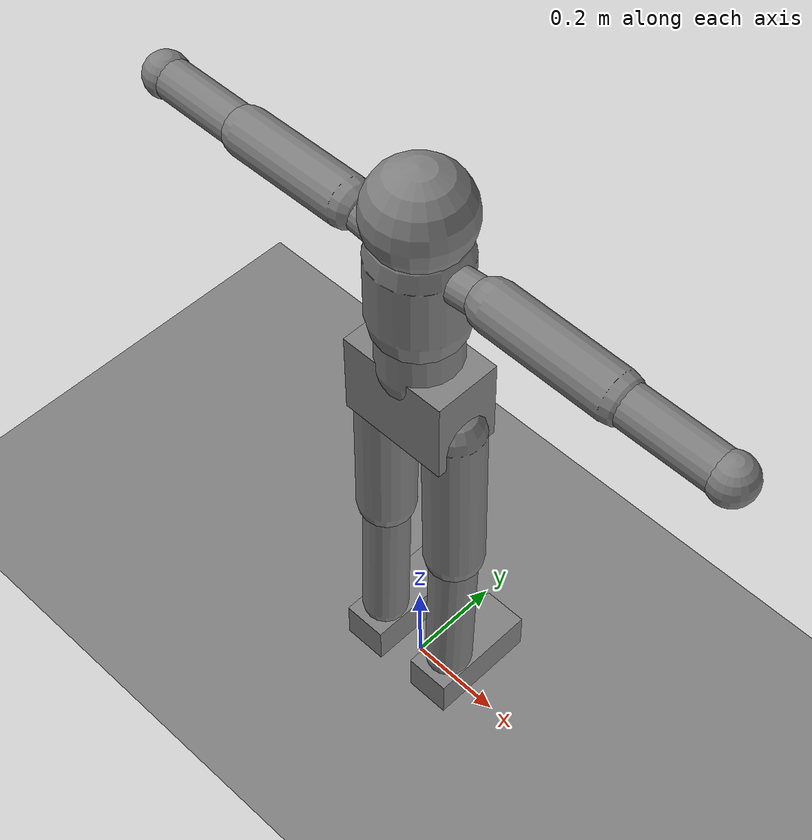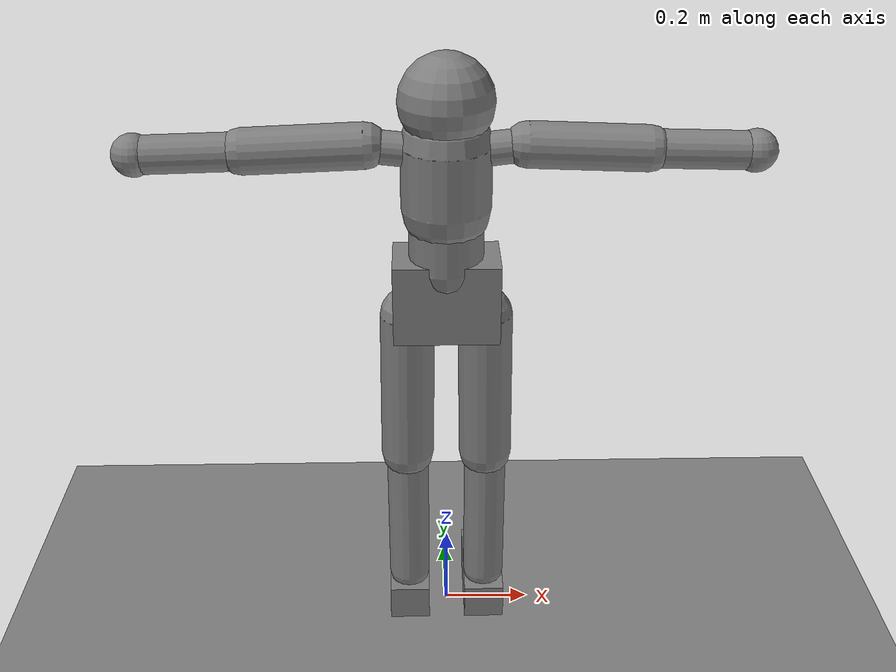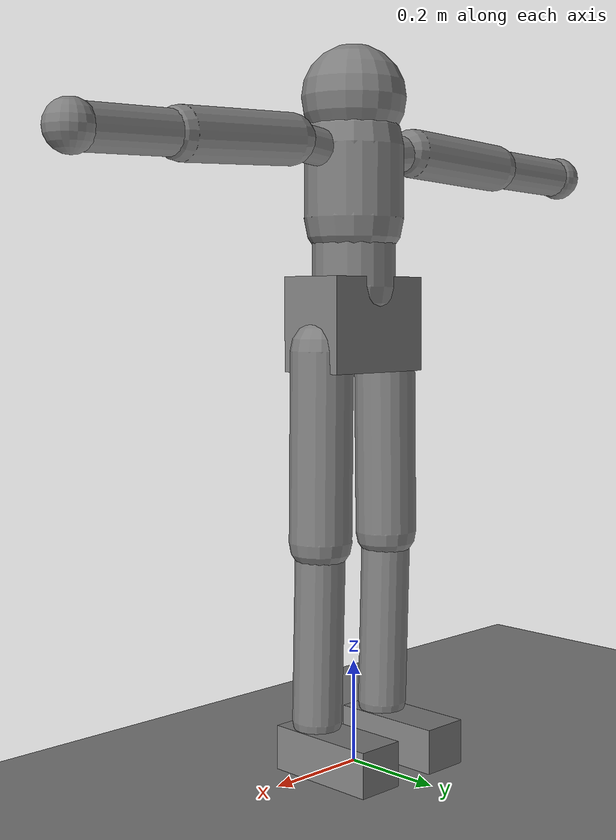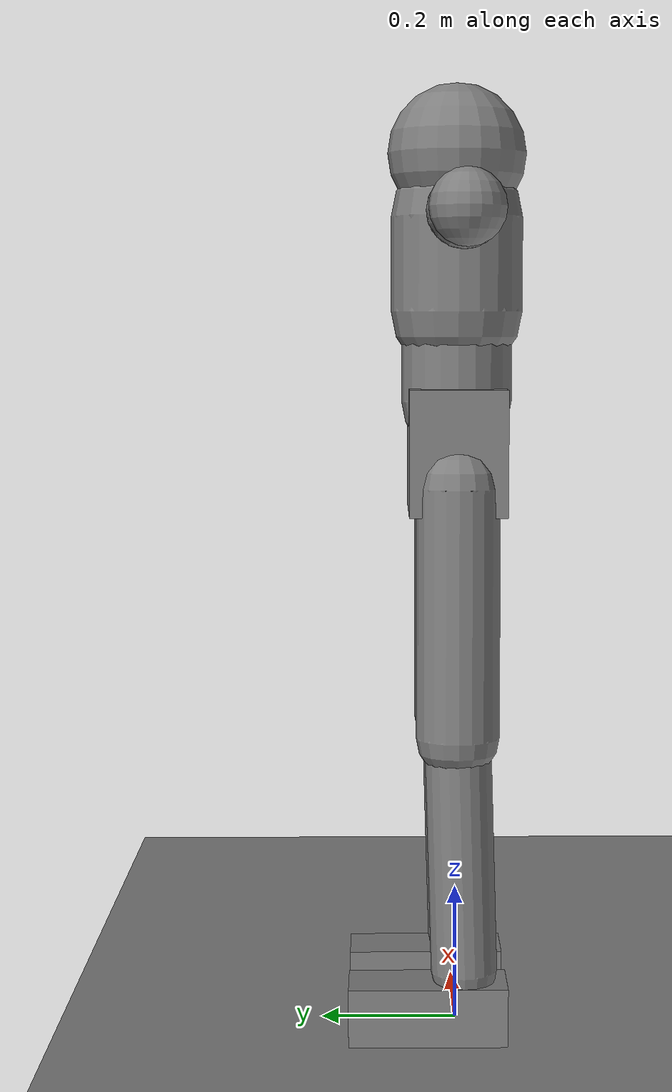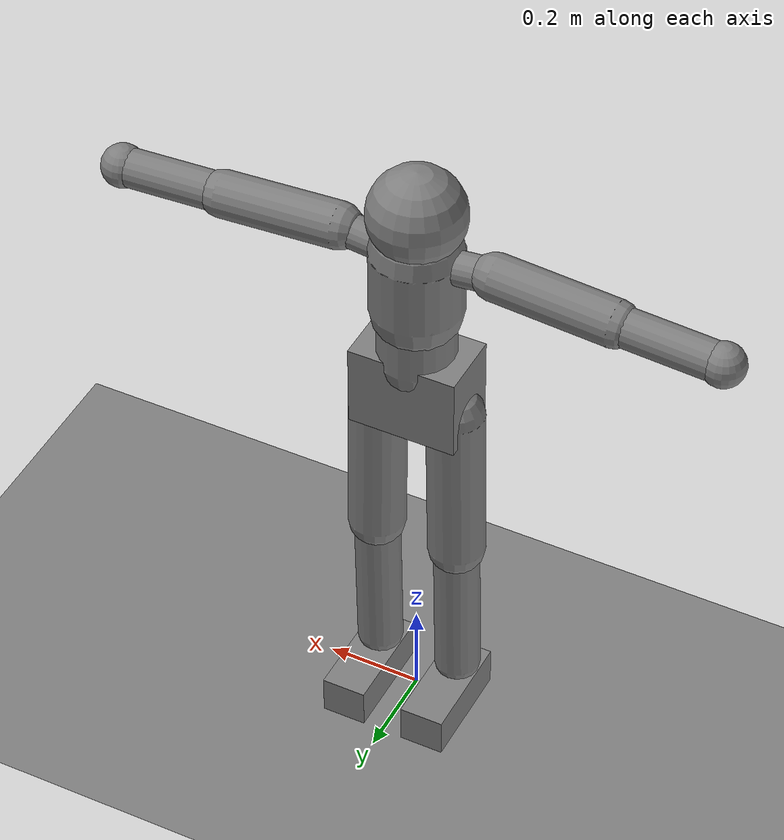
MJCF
<?xml version="1.0" encoding="utf-8"?>
<mujoco>
  <worldbody>
    <body pos="0 0 0.78565" quat="-1 0 0 0" gravcomp="0" name="hips">
      <freejoint name="root" />
      <geom mass="8" type="box" size="0.115 0.07 0.09" pos="0 0 0.06999999" quat="-1 0 0 0" priority="0" contype="1" conaffinity="1" group="0" condim="3" solmix="1" solref="0.01 1" solimp="0.9 0.95 0.001" margin="0" gap="0" friction="1 0.005 0.0001" fluidshape="none" fluidcoef="5 0.25 1.5 1 1" name="pelvis" />
      <body pos="0 0 0.14" quat="-1 0 0 0" gravcomp="0" name="torso">
        <joint type="hinge" pos="0 0 0" axis="-1.192093E-07 0 1" ref="0" armature="0.02" springref="0" springdamper="0 0" damping="1" stiffness="0" solreflimit="0.02 1" solimplimit="0.9 0.95 0.001 0.5 2" solreffriction="0.02 1" solimpfriction="0.9 0.95 0.001 0.5 2" frictionloss="0" limited="true" margin="0" range="-44.99999 44.99999" name="abdomen_z" />
        <joint type="hinge" pos="0 0 0" axis="-1.192093E-07 1 0" ref="0" armature="0.02" springref="0" springdamper="0 0" damping="1" stiffness="0" solreflimit="0.02 1" solimplimit="0.9 0.95 0.001 0.5 2" solreffriction="0.02 1" solimpfriction="0.9 0.95 0.001 0.5 2" frictionloss="0" limited="true" margin="0" range="-34.99998 34.99998" name="abdomen_y" />
        <joint type="hinge" pos="0 0 0" axis="1 0 0" ref="0" armature="0.02" springref="0" springdamper="0 0" damping="1" stiffness="0" solreflimit="0.02 1" solimplimit="0.9 0.95 0.001 0.5 2" solreffriction="0.02 1" solimpfriction="0.9 0.95 0.001 0.5 2" frictionloss="0" limited="true" margin="0" range="-44.99999 24.99998" name="abdomen_x" />
        <geom mass="5" type="capsule" size="0.08 0.065" pos="0 0 0.065" quat="0 1 0 0" priority="0" contype="1" conaffinity="1" group="0" condim="3" solmix="1" solref="0.01 1" solimp="0.9 0.95 0.001" margin="0" gap="0" friction="1 0.005 0.0001" fluidshape="none" fluidcoef="5 0.25 1.5 1 1" name="spine" />
        <geom mass="6.6" type="capsule" size="0.095 0.0675" pos="-1.53734E-09 -3.87107E-09 0.1975" quat="0 1 0 0" priority="0" contype="1" conaffinity="1" group="0" condim="3" solmix="1" solref="0.01 1" solimp="0.9 0.95 0.001" margin="0" gap="0" friction="1 0.005 0.0001" fluidshape="none" fluidcoef="5 0.25 1.5 1 1" name="chest" />
        <geom mass="0.7" type="capsule" size="0.035 0.06791539" pos="-0.0975 -8.6144E-10 0.2575001" quat="0.6669212 1.00118E-07 0.7451282 0" priority="0" contype="1" conaffinity="1" group="0" condim="3" solmix="1" solref="0.01 1" solimp="0.9 0.95 0.001" margin="0" gap="0" friction="1 0.005 0.0001" fluidshape="none" fluidcoef="5 0.25 1.5 1 1" name="clavicle_L" />
        <geom mass="0.7" type="capsule" size="0.035 0.06791539" pos="0.0975 -8.6144E-10 0.2575001" quat="0.6669212 1.00118E-07 -0.7451282 0" priority="0" contype="1" conaffinity="1" group="0" condim="3" solmix="1" solref="0.01 1" solimp="0.9 0.95 0.001" margin="0" gap="0" friction="1 0.005 0.0001" fluidshape="none" fluidcoef="5 0.25 1.5 1 1" name="clavicle_R" />
        <body pos="-3.07468E-09 -7.74214E-09 0.265" quat="-1 0 0 0" gravcomp="0" name="head">
          <joint type="hinge" pos="0 0 0" axis="1 0 0" ref="0" armature="0.02" springref="0" springdamper="0 0" damping="1" stiffness="0" solreflimit="0.02 1" solimplimit="0.9 0.95 0.001 0.5 2" solreffriction="0.02 1" solimpfriction="0.9 0.95 0.001 0.5 2" frictionloss="0" limited="true" margin="0" range="-34.99998 34.99998" name="neck_x" />
          <joint type="hinge" pos="0 0 0" axis="-1.192093E-07 0 1" ref="0" armature="0.02" springref="0" springdamper="0 0" damping="1" stiffness="0" solreflimit="0.02 1" solimplimit="0.9 0.95 0.001 0.5 2" solreffriction="0.02 1" solimpfriction="0.9 0.95 0.001 0.5 2" frictionloss="0" limited="true" margin="0" range="-50.00002 50.00002" name="neck_z" />
          <geom mass="4" type="sphere" size="0.1" pos="0 0 0.09000003" quat="-1 0 0 0" priority="0" contype="1" conaffinity="1" group="0" condim="3" solmix="1" solref="0.01 1" solimp="0.9 0.95 0.001" margin="0" gap="0" friction="1 0.005 0.0001" fluidshape="none" fluidcoef="5 0.25 1.5 1 1" name="head" />
        </body>
        <body pos="-0.165 8.20806E-09 0.265" quat="-1 0 0 0" gravcomp="0" name="upper_arm_L">
          <joint type="hinge" pos="0 0 0" axis="-1.192093E-07 1 0" ref="0" armature="0.02" springref="0" springdamper="0 0" damping="1" stiffness="0" solreflimit="0.02 1" solimplimit="0.9 0.95 0.001 0.5 2" solreffriction="0.02 1" solimpfriction="0.9 0.95 0.001 0.5 2" frictionloss="0" limited="true" margin="0" range="-100 100" name="shoulder_y_L" />
          <joint type="hinge" pos="0 0 0" axis="-1.192093E-07 0 1" ref="0" armature="0.02" springref="0" springdamper="0 0" damping="1" stiffness="0" solreflimit="0.02 1" solimplimit="0.9 0.95 0.001 0.5 2" solreffriction="0.02 1" solimpfriction="0.9 0.95 0.001 0.5 2" frictionloss="0" limited="true" margin="0" range="-85.00001 85.00001" name="shoulder_z_L" />
          <geom mass="1.8" type="capsule" size="0.048 0.125169" pos="-0.125 0.0025 -0.005999804" quat="0.723856 0.0137962 0.6898131 0" priority="0" contype="1" conaffinity="1" group="0" condim="3" solmix="1" solref="0.01 1" solimp="0.9 0.95 0.001" margin="0" gap="0" friction="1 0.005 0.0001" fluidshape="none" fluidcoef="5 0.25 1.5 1 1" name="upper_arm_L" />
          <body pos="-0.25 0.00499999 -0.01199985" quat="-1 0 0 0" gravcomp="0" name="forearm_L">
            <joint type="hinge" pos="0 0 0" axis="-1.192093E-07 0 1" ref="0" armature="0.02" springref="0" springdamper="0 0" damping="1" stiffness="0" solreflimit="0.02 1" solimplimit="0.9 0.95 0.001 0.5 2" solreffriction="0.02 1" solimpfriction="0.9 0.95 0.001 0.5 2" frictionloss="0" limited="true" margin="0" range="-139.9999 0" name="elbow_L" />
            <geom mass="1.15" type="capsule" size="0.04000001 0.110101" pos="-0.11 0.0025 -0.003999949" quat="0.719837 0.0157719 0.693964 0" priority="0" contype="1" conaffinity="1" group="0" condim="3" solmix="1" solref="0.01 1" solimp="0.9 0.95 0.001" margin="0" gap="0" friction="1 0.005 0.0001" fluidshape="none" fluidcoef="5 0.25 1.5 1 1" name="forearm_L" />
            <geom mass="0.25" type="sphere" size="0.045" pos="-0.22 0.005 -0.007999778" quat="-1 0 0 0" priority="0" contype="1" conaffinity="1" group="0" condim="3" solmix="1" solref="0.01 1" solimp="0.9 0.95 0.001" margin="0" gap="0" friction="1 0.005 0.0001" fluidshape="none" fluidcoef="5 0.25 1.5 1 1" name="hand_L" />
          </body>
        </body>
        <body pos="0.165 8.20806E-09 0.265" quat="-1 0 0 0" gravcomp="0" name="upper_arm_R">
          <joint type="hinge" pos="0 0 0" axis="-1.192093E-07 1 0" ref="0" armature="0.02" springref="0" springdamper="0 0" damping="1" stiffness="0" solreflimit="0.02 1" solimplimit="0.9 0.95 0.001 0.5 2" solreffriction="0.02 1" solimpfriction="0.9 0.95 0.001 0.5 2" frictionloss="0" limited="true" margin="0" range="-100 100" name="shoulder_y_R" />
          <joint type="hinge" pos="0 0 0" axis="-1.192093E-07 0 1" ref="0" armature="0.02" springref="0" springdamper="0 0" damping="1" stiffness="0" solreflimit="0.02 1" solimplimit="0.9 0.95 0.001 0.5 2" solreffriction="0.02 1" solimpfriction="0.9 0.95 0.001 0.5 2" frictionloss="0" limited="true" margin="0" range="-85.00001 85.00001" name="shoulder_z_R" />
          <geom mass="1.8" type="capsule" size="0.048 0.125169" pos="0.125 0.0025 -0.005999804" quat="0.723856 0.0137962 -0.6898131 0" priority="0" contype="1" conaffinity="1" group="0" condim="3" solmix="1" solref="0.01 1" solimp="0.9 0.95 0.001" margin="0" gap="0" friction="1 0.005 0.0001" fluidshape="none" fluidcoef="5 0.25 1.5 1 1" name="upper_arm_R" />
          <body pos="0.25 0.00499999 -0.01199985" quat="-1 0 0 0" gravcomp="0" name="forearm_R">
            <joint type="hinge" pos="0 0 0" axis="-1.192093E-07 0 1" ref="0" armature="0.02" springref="0" springdamper="0 0" damping="1" stiffness="0" solreflimit="0.02 1" solimplimit="0.9 0.95 0.001 0.5 2" solreffriction="0.02 1" solimpfriction="0.9 0.95 0.001 0.5 2" frictionloss="0" limited="true" margin="0" range="0 139.9999" name="elbow_R" />
            <geom mass="1.15" type="capsule" size="0.04000001 0.110101" pos="0.11 0.0025 -0.003999949" quat="0.719837 0.0157719 -0.693964 0" priority="0" contype="1" conaffinity="1" group="0" condim="3" solmix="1" solref="0.01 1" solimp="0.9 0.95 0.001" margin="0" gap="0" friction="1 0.005 0.0001" fluidshape="none" fluidcoef="5 0.25 1.5 1 1" name="forearm_R" />
            <geom mass="0.25" type="sphere" size="0.045" pos="0.22 0.005 -0.007999778" quat="-1 0 0 0" priority="0" contype="1" conaffinity="1" group="0" condim="3" solmix="1" solref="0.01 1" solimp="0.9 0.95 0.001" margin="0" gap="0" friction="1 0.005 0.0001" fluidshape="none" fluidcoef="5 0.25 1.5 1 1" name="hand_R" />
          </body>
        </body>
      </body>
      <body pos="-0.085 2.85192E-11 0.01999998" quat="-1 0 0 0" gravcomp="0" name="thigh_L">
        <joint type="hinge" pos="0 0 0" axis="-1.192093E-07 0 1" ref="0" armature="0.02" springref="0" springdamper="0 0" damping="1" stiffness="0" solreflimit="0.02 1" solimplimit="0.9 0.95 0.001 0.5 2" solreffriction="0.02 1" solimpfriction="0.9 0.95 0.001 0.5 2" frictionloss="0" limited="true" margin="0" range="-44.99999 44.99999" name="hip_z_L" />
        <joint type="hinge" pos="0 0 0" axis="1 0 0" ref="0" armature="0.02" springref="0" springdamper="0 0" damping="1" stiffness="0" solreflimit="0.02 1" solimplimit="0.9 0.95 0.001 0.5 2" solreffriction="0.02 1" solimpfriction="0.9 0.95 0.001 0.5 2" frictionloss="0" limited="true" margin="0" range="-34.99998 109.9999" name="hip_x_L" />
        <joint type="hinge" pos="0 0 0" axis="-1.192093E-07 1 0" ref="0" armature="0.02" springref="0" springdamper="0 0" damping="1" stiffness="0" solreflimit="0.02 1" solimplimit="0.9 0.95 0.001 0.5 2" solreffriction="0.02 1" solimpfriction="0.9 0.95 0.001 0.5 2" frictionloss="0" limited="true" margin="0" range="-40.00002 40.00002" name="hip_y_L" />
        <geom mass="4.5" type="capsule" size="0.06 0.180017" pos="-0.002499998 -1.27403E-11 -0.18" quat="0.999976 -3.53873E-11 0.00694394 0" priority="0" contype="1" conaffinity="1" group="0" condim="3" solmix="1" solref="0.01 1" solimp="0.9 0.95 0.001" margin="0" gap="0" friction="1 0.005 0.0001" fluidshape="none" fluidcoef="5 0.25 1.5 1 1" name="thigh_L" />
        <body pos="-0.005000003 -2.54807E-11 -0.36" quat="-1 0 0 0" gravcomp="0" name="shin_L">
          <joint type="hinge" pos="0 0 0" axis="1 0 0" ref="0" armature="0.02" springref="0" springdamper="0 0" damping="1" stiffness="0" solreflimit="0.02 1" solimplimit="0.9 0.95 0.001 0.5 2" solreffriction="0.02 1" solimpfriction="0.9 0.95 0.001 0.5 2" frictionloss="0" limited="true" margin="0" range="-160.0002 0" name="knee_L" />
          <geom mass="1.8" type="capsule" size="0.048 0.172572" pos="0 -0.005 -0.1725" quat="0.999895 -0.0144882 -3.17359E-10 0" priority="0" contype="1" conaffinity="1" group="0" condim="3" solmix="1" solref="0.01 1" solimp="0.9 0.95 0.001" margin="0" gap="0" friction="1 0.005 0.0001" fluidshape="none" fluidcoef="5 0.25 1.5 1 1" name="shin_L" />
          <body pos="0 -0.01 -0.3450001" quat="-1 0 0 0" gravcomp="0" name="foot_L">
            <joint type="hinge" pos="0 0 0" axis="1 0 0" ref="0" armature="0.02" springref="0" springdamper="0 0" damping="1" stiffness="0" solreflimit="0.02 1" solimplimit="0.9 0.95 0.001 0.5 2" solreffriction="0.02 1" solimpfriction="0.9 0.95 0.001 0.5 2" frictionloss="0" limited="true" margin="0" range="-44.99999 44.99999" name="ankle_L" />
            <geom mass="0.5" type="box" size="0.0470074 0.11527 0.0428248" pos="0 0.0529468 -0.05782473" quat="-1 0 0 0" priority="0" contype="1" conaffinity="1" group="0" condim="3" solmix="1" solref="0.01 1" solimp="0.9 0.95 0.001" margin="0" gap="0" friction="1.2 0.02 0.001" fluidshape="none" fluidcoef="5 0.25 1.5 1 1" name="foot_L" />
          </body>
        </body>
      </body>
      <body pos="0.085 2.85192E-11 0.01999998" quat="-1 0 0 0" gravcomp="0" name="thigh_R">
        <joint type="hinge" pos="0 0 0" axis="-1.192093E-07 0 1" ref="0" armature="0.02" springref="0" springdamper="0 0" damping="1" stiffness="0" solreflimit="0.02 1" solimplimit="0.9 0.95 0.001 0.5 2" solreffriction="0.02 1" solimpfriction="0.9 0.95 0.001 0.5 2" frictionloss="0" limited="true" margin="0" range="-44.99999 44.99999" name="hip_z_R" />
        <joint type="hinge" pos="0 0 0" axis="1 0 0" ref="0" armature="0.02" springref="0" springdamper="0 0" damping="1" stiffness="0" solreflimit="0.02 1" solimplimit="0.9 0.95 0.001 0.5 2" solreffriction="0.02 1" solimpfriction="0.9 0.95 0.001 0.5 2" frictionloss="0" limited="true" margin="0" range="-34.99998 109.9999" name="hip_x_R" />
        <joint type="hinge" pos="0 0 0" axis="-1.192093E-07 1 0" ref="0" armature="0.02" springref="0" springdamper="0 0" damping="1" stiffness="0" solreflimit="0.02 1" solimplimit="0.9 0.95 0.001 0.5 2" solreffriction="0.02 1" solimpfriction="0.9 0.95 0.001 0.5 2" frictionloss="0" limited="true" margin="0" range="-40.00002 40.00002" name="hip_y_R" />
        <geom mass="4.5" type="capsule" size="0.06 0.180017" pos="0.002499998 -1.27403E-11 -0.18" quat="0.999976 -3.53873E-11 -0.00694394 0" priority="0" contype="1" conaffinity="1" group="0" condim="3" solmix="1" solref="0.01 1" solimp="0.9 0.95 0.001" margin="0" gap="0" friction="1 0.005 0.0001" fluidshape="none" fluidcoef="5 0.25 1.5 1 1" name="thigh_R" />
        <body pos="0.005000003 -2.54807E-11 -0.36" quat="-1 0 0 0" gravcomp="0" name="shin_R">
          <joint type="hinge" pos="0 0 0" axis="1 0 0" ref="0" armature="0.02" springref="0" springdamper="0 0" damping="1" stiffness="0" solreflimit="0.02 1" solimplimit="0.9 0.95 0.001 0.5 2" solreffriction="0.02 1" solimpfriction="0.9 0.95 0.001 0.5 2" frictionloss="0" limited="true" margin="0" range="-160.0002 0" name="knee_R" />
          <geom mass="1.8" type="capsule" size="0.048 0.172572" pos="0 -0.005 -0.1725" quat="0.999895 -0.0144882 3.17359E-10 0" priority="0" contype="1" conaffinity="1" group="0" condim="3" solmix="1" solref="0.01 1" solimp="0.9 0.95 0.001" margin="0" gap="0" friction="1 0.005 0.0001" fluidshape="none" fluidcoef="5 0.25 1.5 1 1" name="shin_R" />
          <body pos="0 -0.01 -0.3450001" quat="-1 0 0 0" gravcomp="0" name="foot_R">
            <joint type="hinge" pos="0 0 0" axis="1 0 0" ref="0" armature="0.02" springref="0" springdamper="0 0" damping="1" stiffness="0" solreflimit="0.02 1" solimplimit="0.9 0.95 0.001 0.5 2" solreffriction="0.02 1" solimpfriction="0.9 0.95 0.001 0.5 2" frictionloss="0" limited="true" margin="0" range="-44.99999 44.99999" name="ankle_R" />
            <geom mass="0.5" type="box" size="0.0470074 0.11527 0.0428248" pos="0 0.0529468 -0.05782473" quat="-1 0 0 0" priority="0" contype="1" conaffinity="1" group="0" condim="3" solmix="1" solref="0.01 1" solimp="0.9 0.95 0.001" margin="0" gap="0" friction="1.2 0.02 0.001" fluidshape="none" fluidcoef="5 0.25 1.5 1 1" name="foot_R" />
          </body>
        </body>
      </body>
    </body>
    <geom density="1000" type="plane" size="0 0 1" pos="0 0 0" quat="-1 0 0 0" priority="0" contype="1" conaffinity="1" group="0" condim="3" solmix="1" solref="0.01 1" solimp="0.9 0.95 0.001" margin="0" gap="0" friction="1 0.005 0.0001" fluidshape="none" fluidcoef="5 0.25 1.5 1 1" name="floor" />
  </worldbody>
  <contact />
  <tendon />
  <equality />
  <actuator>
    <general joint="abdomen_z" ctrllimited="true" forcelimited="true" ctrlrange="-0.785398 0.785398" forcerange="-200 200" lengthrange="0 0" gear="1" dyntype="none" gaintype="fixed" biastype="affine" dynprm="1 0 0" gainprm="1200 0 0" biasprm="0 -1200 -78.4282" name="act_abdomen_z" />
    <general joint="abdomen_y" ctrllimited="true" forcelimited="true" ctrlrange="-0.610865 0.610865" forcerange="-200 200" lengthrange="0 0" gear="1" dyntype="none" gaintype="fixed" biastype="affine" dynprm="1 0 0" gainprm="1200 0 0" biasprm="0 -1200 -112.061" name="act_abdomen_y" />
    <general joint="abdomen_x" ctrllimited="true" forcelimited="true" ctrlrange="-0.785398 0.436332" forcerange="-200 200" lengthrange="0 0" gear="1" dyntype="none" gaintype="fixed" biastype="affine" dynprm="1 0 0" gainprm="1200 0 0" biasprm="0 -1200 -82.5464" name="act_abdomen_x" />
    <general joint="neck_x" ctrllimited="true" forcelimited="true" ctrlrange="-0.610865 0.610865" forcerange="-40 40" lengthrange="0 0" gear="1" dyntype="none" gaintype="fixed" biastype="affine" dynprm="1 0 0" gainprm="240 0 0" biasprm="0 -240 -8.10333" name="act_neck_x" />
    <general joint="neck_z" ctrllimited="true" forcelimited="true" ctrlrange="-0.872665 0.872665" forcerange="-40 40" lengthrange="0 0" gear="1" dyntype="none" gaintype="fixed" biastype="affine" dynprm="1 0 0" gainprm="240 0 0" biasprm="0 -240 -5.87878" name="act_neck_z" />
    <general joint="shoulder_y_L" ctrllimited="true" forcelimited="true" ctrlrange="-1.74533 1.74533" forcerange="-80 80" lengthrange="0 0" gear="1" dyntype="none" gaintype="fixed" biastype="affine" dynprm="1 0 0" gainprm="480 0 0" biasprm="0 -480 -23.0533" name="act_shoulder_y_L" />
    <general joint="shoulder_z_L" ctrllimited="true" forcelimited="true" ctrlrange="-1.48353 1.48353" forcerange="-80 80" lengthrange="0 0" gear="1" dyntype="none" gaintype="fixed" biastype="affine" dynprm="1 0 0" gainprm="480 0 0" biasprm="0 -480 -23.037" name="act_shoulder_z_L" />
    <general joint="elbow_L" ctrllimited="true" forcelimited="true" ctrlrange="-2.44346 0" forcerange="-60 60" lengthrange="0 0" gear="1" dyntype="none" gaintype="fixed" biastype="affine" dynprm="1 0 0" gainprm="320 0 0" biasprm="0 -320 -8.30886" name="act_elbow_L" />
    <general joint="shoulder_y_R" ctrllimited="true" forcelimited="true" ctrlrange="-1.74533 1.74533" forcerange="-80 80" lengthrange="0 0" gear="1" dyntype="none" gaintype="fixed" biastype="affine" dynprm="1 0 0" gainprm="480 0 0" biasprm="0 -480 -23.0533" name="act_shoulder_y_R" />
    <general joint="shoulder_z_R" ctrllimited="true" forcelimited="true" ctrlrange="-1.48353 1.48353" forcerange="-80 80" lengthrange="0 0" gear="1" dyntype="none" gaintype="fixed" biastype="affine" dynprm="1 0 0" gainprm="480 0 0" biasprm="0 -480 -23.037" name="act_shoulder_z_R" />
    <general joint="elbow_R" ctrllimited="true" forcelimited="true" ctrlrange="0 2.44346" forcerange="-60 60" lengthrange="0 0" gear="1" dyntype="none" gaintype="fixed" biastype="affine" dynprm="1 0 0" gainprm="320 0 0" biasprm="0 -320 -8.30886" name="act_elbow_R" />
    <general joint="hip_z_L" ctrllimited="true" forcelimited="true" ctrlrange="-0.785398 0.785398" forcerange="-250 250" lengthrange="0 0" gear="1" dyntype="none" gaintype="fixed" biastype="affine" dynprm="1 0 0" gainprm="1400 0 0" biasprm="0 -1400 -13.6934" name="act_hip_z_L" />
    <general joint="hip_x_L" ctrllimited="true" forcelimited="true" ctrlrange="-0.610865 1.91986" forcerange="-250 250" lengthrange="0 0" gear="1" dyntype="none" gaintype="fixed" biastype="affine" dynprm="1 0 0" gainprm="1400 0 0" biasprm="0 -1400 -77.566" name="act_hip_x_L" />
    <general joint="hip_y_L" ctrllimited="true" forcelimited="true" ctrlrange="-0.698132 0.698132" forcerange="-250 250" lengthrange="0 0" gear="1" dyntype="none" gaintype="fixed" biastype="affine" dynprm="1 0 0" gainprm="1400 0 0" biasprm="0 -1400 -77.4672" name="act_hip_y_L" />
    <general joint="knee_L" ctrllimited="true" forcelimited="true" ctrlrange="-2.79253 0" forcerange="-250 250" lengthrange="0 0" gear="1" dyntype="none" gaintype="fixed" biastype="affine" dynprm="1 0 0" gainprm="1200 0 0" biasprm="0 -1200 -29.761" name="act_knee_L" />
    <general joint="ankle_L" ctrllimited="true" forcelimited="true" ctrlrange="-0.785398 0.785398" forcerange="-100 100" lengthrange="0 0" gear="1" dyntype="none" gaintype="fixed" biastype="affine" dynprm="1 0 0" gainprm="480 0 0" biasprm="0 -480 -7.00999" name="act_ankle_L" />
    <general joint="hip_z_R" ctrllimited="true" forcelimited="true" ctrlrange="-0.785398 0.785398" forcerange="-250 250" lengthrange="0 0" gear="1" dyntype="none" gaintype="fixed" biastype="affine" dynprm="1 0 0" gainprm="1400 0 0" biasprm="0 -1400 -13.6934" name="act_hip_z_R" />
    <general joint="hip_x_R" ctrllimited="true" forcelimited="true" ctrlrange="-0.610865 1.91986" forcerange="-250 250" lengthrange="0 0" gear="1" dyntype="none" gaintype="fixed" biastype="affine" dynprm="1 0 0" gainprm="1400 0 0" biasprm="0 -1400 -77.566" name="act_hip_x_R" />
    <general joint="hip_y_R" ctrllimited="true" forcelimited="true" ctrlrange="-0.698132 0.698132" forcerange="-250 250" lengthrange="0 0" gear="1" dyntype="none" gaintype="fixed" biastype="affine" dynprm="1 0 0" gainprm="1400 0 0" biasprm="0 -1400 -77.4672" name="act_hip_y_R" />
    <general joint="knee_R" ctrllimited="true" forcelimited="true" ctrlrange="-2.79253 0" forcerange="-250 250" lengthrange="0 0" gear="1" dyntype="none" gaintype="fixed" biastype="affine" dynprm="1 0 0" gainprm="1200 0 0" biasprm="0 -1200 -29.761" name="act_knee_R" />
    <general joint="ankle_R" ctrllimited="true" forcelimited="true" ctrlrange="-0.785398 0.785398" forcerange="-100 100" lengthrange="0 0" gear="1" dyntype="none" gaintype="fixed" biastype="affine" dynprm="1 0 0" gainprm="480 0 0" biasprm="0 -480 -7.00999" name="act_ankle_R" />
  </actuator>
  <sensor />
  <compiler coordinate="local" />
  <option gravity="0 0 -9.81" timestep="0.004999993" />
  <option impratio="1" magnetic="0 0 0" wind="0 0 0" density="0" viscosity="0" o_margin="0" o_solref="0.02 1" o_solimp="0.9 0.95 0.001 0.5 2" integrator="implicitfast" cone="pyramidal" jacobian="dense" solver="Newton" iterations="10" tolerance="1E-08" noslip_iterations="0" noslip_tolerance="1E-06" ccd_iterations="50" ccd_tolerance="1E-06">
    <flag constraint="enable" equality="enable" frictionloss="enable" limit="enable" contact="enable" spring="enable" damper="enable" gravity="enable" clampctrl="enable" warmstart="enable" filterparent="enable" actuation="enable" refsafe="enable" override="disable" energy="disable" fwdinv="disable" multiccd="disable" />
  </option>
  <size memory="-1" />
  <custom />
  <asset />
</mujoco>
